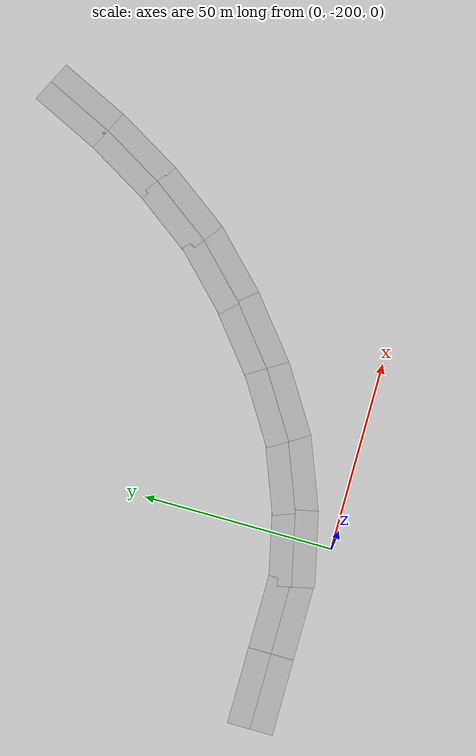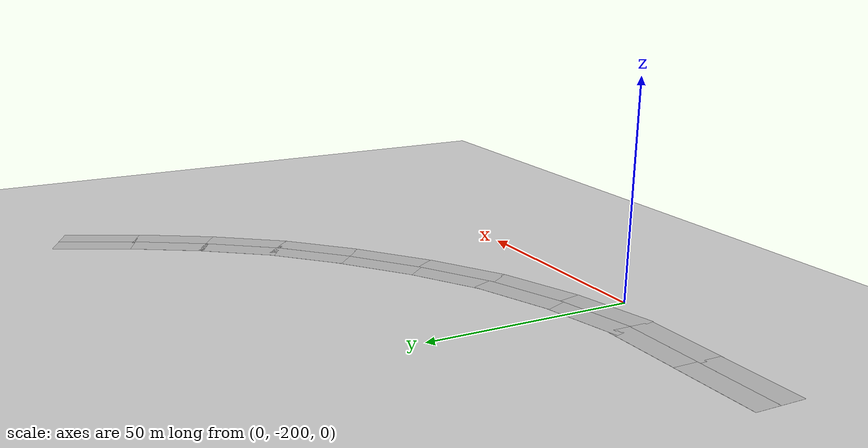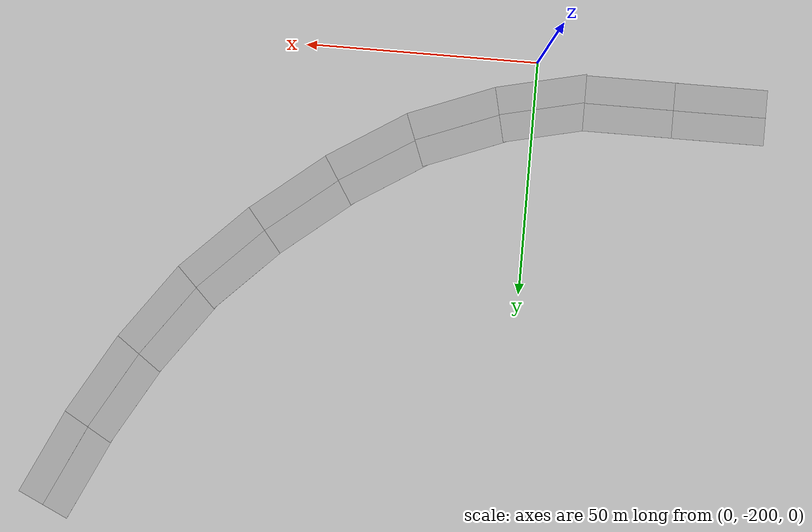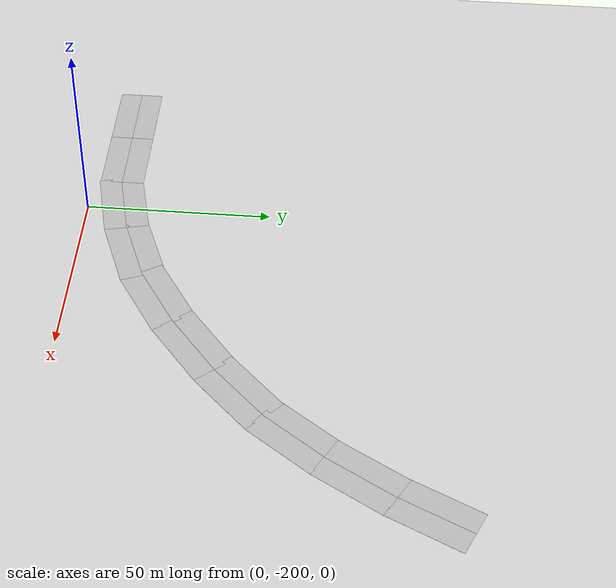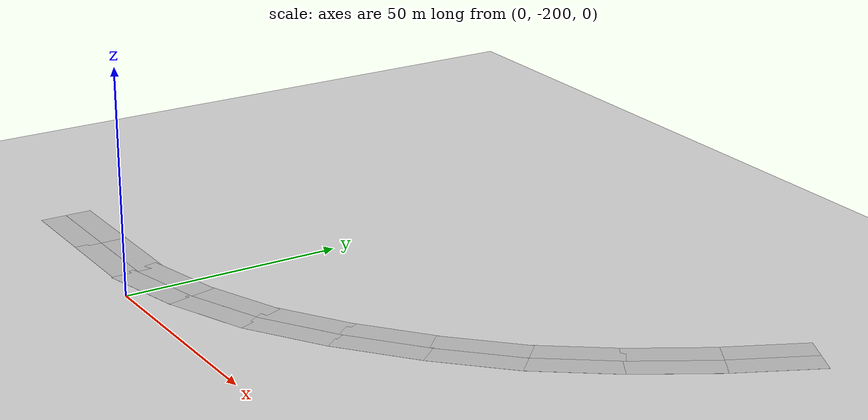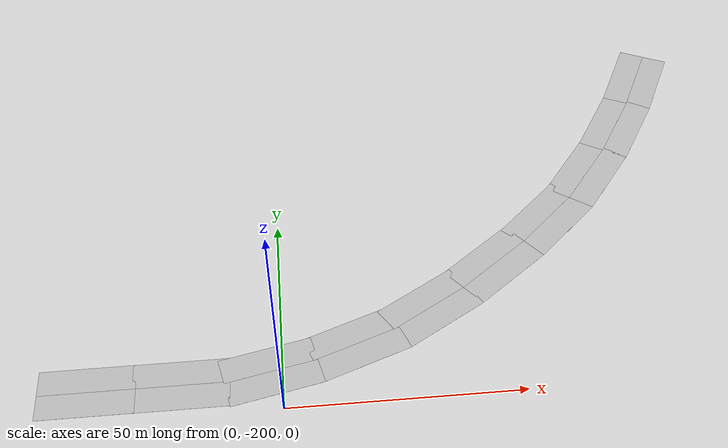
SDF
<sdf version="1.6">
 <world name="default">
  <model name="ground_plane">
   <static>1</static>
   <link name="link">
    <collision name="collision">
     <geometry><plane><normal>0 0 1</normal><size>500 500</size></plane></geometry>
     <surface><friction><ode><mu>100</mu><mu2>50</mu2></ode></friction></surface>
    </collision>
    <visual name="visual">
     <cast_shadows>0</cast_shadows>
     <geometry><plane><normal>0 0 1</normal><size>500 500</size></plane></geometry>
     <material>
      <script><uri>file://media/materials/scripts/gazebo.material</uri><name>Gazebo/Grey</name></script>
     </material>
    </visual>
   </link>
  </model>
  <model name="double_raw_road_4_clone_1">
   <model name="raw_road">
    <link name="link">
     <inertial>
      <mass>1</mass>
      <inertia>
       <ixx>0.166667</ixx>
       <ixy>0</ixy>
       <ixz>0</ixz>
       <iyy>0.166667</iyy>
       <iyz>0</iyz>
       <izz>0.166667</izz>
      </inertia>
     </inertial>
     <visual name="visual">
      <geometry><box><size>20 6 0.02</size></box></geometry>
      <material>
       <script>
        <name>asphalt/Diffuse</name>
        <uri>model://raw_road/materials/scripts</uri>
        <uri>model://raw_road/materials/textures</uri>
       </script>
       <shader type="vertex"><normal_map>__default__</normal_map></shader>
       <ambient>0.3 0.3 0.3 1</ambient>
       <diffuse>0.7 0.7 0.7 1</diffuse>
       <specular>0.01 0.01 0.01 1</specular>
       <emissive>0 0 0 1</emissive>
      </material>
      <pose>0 0 0.01 0 -0 0</pose>
     </visual>
     <collision name="collision">
      <pose>0 0 0.01 0 -0 0</pose>
      <geometry><box><size>20 6 0.02</size></box></geometry>
      <surface>
       <friction>
        <ode><mu>1</mu><mu2>1</mu2><fdir1>0 0 0</fdir1><slip1>0</slip1><slip2>0</slip2></ode>
        <torsional>
         <coefficient>1</coefficient>
         <patch_radius>0</patch_radius>
         <surface_radius>0</surface_radius>
         <use_patch_radius>1</use_patch_radius>
         <ode><slip>0</slip></ode>
        </torsional>
       </friction>
       <bounce><restitution_coefficient>0</restitution_coefficient><threshold>1e+06</threshold></bounce>
       <contact>
        <collide_without_contact>0</collide_without_contact>
        <collide_without_contact_bitmask>1</collide_without_contact_bitmask>
        <collide_bitmask>1</collide_bitmask>
        <ode>
         <soft_cfm>0</soft_cfm>
         <soft_erp>0.2</soft_erp>
         <kp>1e+13</kp>
         <kd>1</kd>
         <max_vel>0.01</max_vel>
         <min_depth>0</min_depth>
        </ode>
        <bullet>
         <split_impulse>1</split_impulse>
         <split_impulse_penetration_threshold>-0.01</split_impulse_penetration_threshold>
         <soft_cfm>0</soft_cfm>
         <soft_erp>0.2</soft_erp>
         <kp>1e+13</kp>
         <kd>1</kd>
        </bullet>
       </contact>
      </surface>
     </collision>
    </link>
    <static>1</static>
    <pose>0 -3.0009 0 0 -0 0</pose>
   </model>
   <model name="raw_road_0">
    <link name="link">
     <inertial>
      <mass>1</mass>
      <inertia>
       <ixx>0.166667</ixx>
       <ixy>0</ixy>
       <ixz>0</ixz>
       <iyy>0.166667</iyy>
       <iyz>0</iyz>
       <izz>0.166667</izz>
      </inertia>
     </inertial>
     <visual name="visual">
      <geometry><box><size>20 6 0.02</size></box></geometry>
      <material>
       <script>
        <name>asphalt/Diffuse</name>
        <uri>model://raw_road/materials/scripts</uri>
        <uri>model://raw_road/materials/textures</uri>
       </script>
       <shader type="vertex"><normal_map>__default__</normal_map></shader>
       <ambient>0.3 0.3 0.3 1</ambient>
       <diffuse>0.7 0.7 0.7 1</diffuse>
       <specular>0.01 0.01 0.01 1</specular>
       <emissive>0 0 0 1</emissive>
      </material>
      <pose>0 0 0.01 0 -0 0</pose>
     </visual>
     <collision name="collision">
      <pose>0 0 0.01 0 -0 0</pose>
      <geometry><box><size>20 6 0.02</size></box></geometry>
      <surface>
       <friction>
        <ode><mu>1</mu><mu2>1</mu2><fdir1>0 0 0</fdir1><slip1>0</slip1><slip2>0</slip2></ode>
        <torsional>
         <coefficient>1</coefficient>
         <patch_radius>0</patch_radius>
         <surface_radius>0</surface_radius>
         <use_patch_radius>1</use_patch_radius>
         <ode><slip>0</slip></ode>
        </torsional>
       </friction>
       <bounce><restitution_coefficient>0</restitution_coefficient><threshold>1e+06</threshold></bounce>
       <contact>
        <collide_without_contact>0</collide_without_contact>
        <collide_without_contact_bitmask>1</collide_without_contact_bitmask>
        <collide_bitmask>1</collide_bitmask>
        <ode>
         <soft_cfm>0</soft_cfm>
         <soft_erp>0.2</soft_erp>
         <kp>1e+13</kp>
         <kd>1</kd>
         <max_vel>0.01</max_vel>
         <min_depth>0</min_depth>
        </ode>
        <bullet>
         <split_impulse>1</split_impulse>
         <split_impulse_penetration_threshold>-0.01</split_impulse_penetration_threshold>
         <soft_cfm>0</soft_cfm>
         <soft_erp>0.2</soft_erp>
         <kp>1e+13</kp>
         <kd>1</kd>
        </bullet>
       </contact>
      </surface>
     </collision>
    </link>
    <static>1</static>
    <pose>0 3.0009 0 0 -0 0</pose>
   </model>
   <static>1</static>
   <pose>-40.145 -192.247 0 0 -0 0</pose>
  </model>
  <model name="double_raw_road_4_clone_2">
   <model name="raw_road">
    <link name="link">
     <inertial>
      <mass>1</mass>
      <inertia>
       <ixx>0.166667</ixx>
       <ixy>0</ixy>
       <ixz>0</ixz>
       <iyy>0.166667</iyy>
       <iyz>0</iyz>
       <izz>0.166667</izz>
      </inertia>
     </inertial>
     <visual name="visual">
      <geometry><box><size>20 6 0.02</size></box></geometry>
      <material>
       <script>
        <name>asphalt/Diffuse</name>
        <uri>model://raw_road/materials/scripts</uri>
        <uri>model://raw_road/materials/textures</uri>
       </script>
       <shader type="vertex"><normal_map>__default__</normal_map></shader>
       <ambient>0.3 0.3 0.3 1</ambient>
       <diffuse>0.7 0.7 0.7 1</diffuse>
       <specular>0.01 0.01 0.01 1</specular>
       <emissive>0 0 0 1</emissive>
      </material>
      <pose>0 0 0.01 0 -0 0</pose>
     </visual>
     <collision name="collision">
      <pose>0 0 0.01 0 -0 0</pose>
      <geometry><box><size>20 6 0.02</size></box></geometry>
      <surface>
       <friction>
        <ode><mu>1</mu><mu2>1</mu2><fdir1>0 0 0</fdir1><slip1>0</slip1><slip2>0</slip2></ode>
        <torsional>
         <coefficient>1</coefficient>
         <patch_radius>0</patch_radius>
         <surface_radius>0</surface_radius>
         <use_patch_radius>1</use_patch_radius>
         <ode><slip>0</slip></ode>
        </torsional>
       </friction>
       <bounce><restitution_coefficient>0</restitution_coefficient><threshold>1e+06</threshold></bounce>
       <contact>
        <collide_without_contact>0</collide_without_contact>
        <collide_without_contact_bitmask>1</collide_without_contact_bitmask>
        <collide_bitmask>1</collide_bitmask>
        <ode>
         <soft_cfm>0</soft_cfm>
         <soft_erp>0.2</soft_erp>
         <kp>1e+13</kp>
         <kd>1</kd>
         <max_vel>0.01</max_vel>
         <min_depth>0</min_depth>
        </ode>
        <bullet>
         <split_impulse>1</split_impulse>
         <split_impulse_penetration_threshold>-0.01</split_impulse_penetration_threshold>
         <soft_cfm>0</soft_cfm>
         <soft_erp>0.2</soft_erp>
         <kp>1e+13</kp>
         <kd>1</kd>
        </bullet>
       </contact>
      </surface>
     </collision>
    </link>
    <static>1</static>
    <pose>0 -3.0009 0 0 -0 0</pose>
   </model>
   <model name="raw_road_0">
    <link name="link">
     <inertial>
      <mass>1</mass>
      <inertia>
       <ixx>0.166667</ixx>
       <ixy>0</ixy>
       <ixz>0</ixz>
       <iyy>0.166667</iyy>
       <iyz>0</iyz>
       <izz>0.166667</izz>
      </inertia>
     </inertial>
     <visual name="visual">
      <geometry><box><size>20 6 0.02</size></box></geometry>
      <material>
       <script>
        <name>asphalt/Diffuse</name>
        <uri>model://raw_road/materials/scripts</uri>
        <uri>model://raw_road/materials/textures</uri>
       </script>
       <shader type="vertex"><normal_map>__default__</normal_map></shader>
       <ambient>0.3 0.3 0.3 1</ambient>
       <diffuse>0.7 0.7 0.7 1</diffuse>
       <specular>0.01 0.01 0.01 1</specular>
       <emissive>0 0 0 1</emissive>
      </material>
      <pose>0 0 0.01 0 -0 0</pose>
     </visual>
     <collision name="collision">
      <pose>0 0 0.01 0 -0 0</pose>
      <geometry><box><size>20 6 0.02</size></box></geometry>
      <surface>
       <friction>
        <ode><mu>1</mu><mu2>1</mu2><fdir1>0 0 0</fdir1><slip1>0</slip1><slip2>0</slip2></ode>
        <torsional>
         <coefficient>1</coefficient>
         <patch_radius>0</patch_radius>
         <surface_radius>0</surface_radius>
         <use_patch_radius>1</use_patch_radius>
         <ode><slip>0</slip></ode>
        </torsional>
       </friction>
       <bounce><restitution_coefficient>0</restitution_coefficient><threshold>1e+06</threshold></bounce>
       <contact>
        <collide_without_contact>0</collide_without_contact>
        <collide_without_contact_bitmask>1</collide_without_contact_bitmask>
        <collide_bitmask>1</collide_bitmask>
        <ode>
         <soft_cfm>0</soft_cfm>
         <soft_erp>0.2</soft_erp>
         <kp>1e+13</kp>
         <kd>1</kd>
         <max_vel>0.01</max_vel>
         <min_depth>0</min_depth>
        </ode>
        <bullet>
         <split_impulse>1</split_impulse>
         <split_impulse_penetration_threshold>-0.01</split_impulse_penetration_threshold>
         <soft_cfm>0</soft_cfm>
         <soft_erp>0.2</soft_erp>
         <kp>1e+13</kp>
         <kd>1</kd>
        </bullet>
       </contact>
      </surface>
     </collision>
    </link>
    <static>1</static>
    <pose>0 3.0009 0 0 -0 0</pose>
   </model>
   <static>1</static>
   <pose>-20.8628 -192.274 0 0 -0 0</pose>
  </model>
  <model name="double_raw_road_4_clone_2_clone_0">
   <model name="raw_road">
    <link name="link">
     <inertial>
      <mass>1</mass>
      <inertia>
       <ixx>0.166667</ixx>
       <ixy>0</ixy>
       <ixz>0</ixz>
       <iyy>0.166667</iyy>
       <iyz>0</iyz>
       <izz>0.166667</izz>
      </inertia>
     </inertial>
     <visual name="visual">
      <geometry><box><size>20 6 0.02</size></box></geometry>
      <material>
       <script>
        <name>asphalt/Diffuse</name>
        <uri>model://raw_road/materials/scripts</uri>
        <uri>model://raw_road/materials/textures</uri>
       </script>
       <shader type="vertex"><normal_map>__default__</normal_map></shader>
       <ambient>0.3 0.3 0.3 1</ambient>
       <diffuse>0.7 0.7 0.7 1</diffuse>
       <specular>0.01 0.01 0.01 1</specular>
       <emissive>0 0 0 1</emissive>
      </material>
      <pose>0 0 0.01 0 -0 0</pose>
     </visual>
     <collision name="collision">
      <pose>0 0 0.01 0 -0 0</pose>
      <geometry><box><size>20 6 0.02</size></box></geometry>
      <surface>
       <friction>
        <ode><mu>1</mu><mu2>1</mu2><fdir1>0 0 0</fdir1><slip1>0</slip1><slip2>0</slip2></ode>
        <torsional>
         <coefficient>1</coefficient>
         <patch_radius>0</patch_radius>
         <surface_radius>0</surface_radius>
         <use_patch_radius>1</use_patch_radius>
         <ode><slip>0</slip></ode>
        </torsional>
       </friction>
       <bounce><restitution_coefficient>0</restitution_coefficient><threshold>1e+06</threshold></bounce>
       <contact>
        <collide_without_contact>0</collide_without_contact>
        <collide_without_contact_bitmask>1</collide_without_contact_bitmask>
        <collide_bitmask>1</collide_bitmask>
        <ode>
         <soft_cfm>0</soft_cfm>
         <soft_erp>0.2</soft_erp>
         <kp>1e+13</kp>
         <kd>1</kd>
         <max_vel>0.01</max_vel>
         <min_depth>0</min_depth>
        </ode>
        <bullet>
         <split_impulse>1</split_impulse>
         <split_impulse_penetration_threshold>-0.01</split_impulse_penetration_threshold>
         <soft_cfm>0</soft_cfm>
         <soft_erp>0.2</soft_erp>
         <kp>1e+13</kp>
         <kd>1</kd>
        </bullet>
       </contact>
      </surface>
     </collision>
    </link>
    <static>1</static>
    <pose>0 -3.0009 0 0 -0 0</pose>
   </model>
   <model name="raw_road_0">
    <link name="link">
     <inertial>
      <mass>1</mass>
      <inertia>
       <ixx>0.166667</ixx>
       <ixy>0</ixy>
       <ixz>0</ixz>
       <iyy>0.166667</iyy>
       <iyz>0</iyz>
       <izz>0.166667</izz>
      </inertia>
     </inertial>
     <visual name="visual">
      <geometry><box><size>20 6 0.02</size></box></geometry>
      <material>
       <script>
        <name>asphalt/Diffuse</name>
        <uri>model://raw_road/materials/scripts</uri>
        <uri>model://raw_road/materials/textures</uri>
       </script>
       <shader type="vertex"><normal_map>__default__</normal_map></shader>
       <ambient>0.3 0.3 0.3 1</ambient>
       <diffuse>0.7 0.7 0.7 1</diffuse>
       <specular>0.01 0.01 0.01 1</specular>
       <emissive>0 0 0 1</emissive>
      </material>
      <pose>0 0 0.01 0 -0 0</pose>
     </visual>
     <collision name="collision">
      <pose>0 0 0.01 0 -0 0</pose>
      <geometry><box><size>20 6 0.02</size></box></geometry>
      <surface>
       <friction>
        <ode><mu>1</mu><mu2>1</mu2><fdir1>0 0 0</fdir1><slip1>0</slip1><slip2>0</slip2></ode>
        <torsional>
         <coefficient>1</coefficient>
         <patch_radius>0</patch_radius>
         <surface_radius>0</surface_radius>
         <use_patch_radius>1</use_patch_radius>
         <ode><slip>0</slip></ode>
        </torsional>
       </friction>
       <bounce><restitution_coefficient>0</restitution_coefficient><threshold>1e+06</threshold></bounce>
       <contact>
        <collide_without_contact>0</collide_without_contact>
        <collide_without_contact_bitmask>1</collide_without_contact_bitmask>
        <collide_bitmask>1</collide_bitmask>
        <ode>
         <soft_cfm>0</soft_cfm>
         <soft_erp>0.2</soft_erp>
         <kp>1e+13</kp>
         <kd>1</kd>
         <max_vel>0.01</max_vel>
         <min_depth>0</min_depth>
        </ode>
        <bullet>
         <split_impulse>1</split_impulse>
         <split_impulse_penetration_threshold>-0.01</split_impulse_penetration_threshold>
         <soft_cfm>0</soft_cfm>
         <soft_erp>0.2</soft_erp>
         <kp>1e+13</kp>
         <kd>1</kd>
        </bullet>
       </contact>
      </surface>
     </collision>
    </link>
    <static>1</static>
    <pose>0 3.0009 0 0 -0 0</pose>
   </model>
   <static>1</static>
   <pose>-2.42866 -190.505 0 0 -0 0.221672</pose>
  </model>
  <model name="double_raw_road_4_clone_2_clone_0_clone">
   <model name="raw_road">
    <link name="link">
     <inertial>
      <mass>1</mass>
      <inertia>
       <ixx>0.166667</ixx>
       <ixy>0</ixy>
       <ixz>0</ixz>
       <iyy>0.166667</iyy>
       <iyz>0</iyz>
       <izz>0.166667</izz>
      </inertia>
     </inertial>
     <visual name="visual">
      <geometry><box><size>20 6 0.02</size></box></geometry>
      <material>
       <script>
        <name>asphalt/Diffuse</name>
        <uri>model://raw_road/materials/scripts</uri>
        <uri>model://raw_road/materials/textures</uri>
       </script>
       <shader type="vertex"><normal_map>__default__</normal_map></shader>
       <ambient>0.3 0.3 0.3 1</ambient>
       <diffuse>0.7 0.7 0.7 1</diffuse>
       <specular>0.01 0.01 0.01 1</specular>
       <emissive>0 0 0 1</emissive>
      </material>
      <pose>0 0 0.01 0 -0 0</pose>
     </visual>
     <collision name="collision">
      <pose>0 0 0.01 0 -0 0</pose>
      <geometry><box><size>20 6 0.02</size></box></geometry>
      <surface>
       <friction>
        <ode><mu>1</mu><mu2>1</mu2><fdir1>0 0 0</fdir1><slip1>0</slip1><slip2>0</slip2></ode>
        <torsional>
         <coefficient>1</coefficient>
         <patch_radius>0</patch_radius>
         <surface_radius>0</surface_radius>
         <use_patch_radius>1</use_patch_radius>
         <ode><slip>0</slip></ode>
        </torsional>
       </friction>
       <bounce><restitution_coefficient>0</restitution_coefficient><threshold>1e+06</threshold></bounce>
       <contact>
        <collide_without_contact>0</collide_without_contact>
        <collide_without_contact_bitmask>1</collide_without_contact_bitmask>
        <collide_bitmask>1</collide_bitmask>
        <ode>
         <soft_cfm>0</soft_cfm>
         <soft_erp>0.2</soft_erp>
         <kp>1e+13</kp>
         <kd>1</kd>
         <max_vel>0.01</max_vel>
         <min_depth>0</min_depth>
        </ode>
        <bullet>
         <split_impulse>1</split_impulse>
         <split_impulse_penetration_threshold>-0.01</split_impulse_penetration_threshold>
         <soft_cfm>0</soft_cfm>
         <soft_erp>0.2</soft_erp>
         <kp>1e+13</kp>
         <kd>1</kd>
        </bullet>
       </contact>
      </surface>
     </collision>
    </link>
    <static>1</static>
    <pose>0 -3.0009 0 0 -0 0</pose>
   </model>
   <model name="raw_road_0">
    <link name="link">
     <inertial>
      <mass>1</mass>
      <inertia>
       <ixx>0.166667</ixx>
       <ixy>0</ixy>
       <ixz>0</ixz>
       <iyy>0.166667</iyy>
       <iyz>0</iyz>
       <izz>0.166667</izz>
      </inertia>
     </inertial>
     <visual name="visual">
      <geometry><box><size>20 6 0.02</size></box></geometry>
      <material>
       <script>
        <name>asphalt/Diffuse</name>
        <uri>model://raw_road/materials/scripts</uri>
        <uri>model://raw_road/materials/textures</uri>
       </script>
       <shader type="vertex"><normal_map>__default__</normal_map></shader>
       <ambient>0.3 0.3 0.3 1</ambient>
       <diffuse>0.7 0.7 0.7 1</diffuse>
       <specular>0.01 0.01 0.01 1</specular>
       <emissive>0 0 0 1</emissive>
      </material>
      <pose>0 0 0.01 0 -0 0</pose>
     </visual>
     <collision name="collision">
      <pose>0 0 0.01 0 -0 0</pose>
      <geometry><box><size>20 6 0.02</size></box></geometry>
      <surface>
       <friction>
        <ode><mu>1</mu><mu2>1</mu2><fdir1>0 0 0</fdir1><slip1>0</slip1><slip2>0</slip2></ode>
        <torsional>
         <coefficient>1</coefficient>
         <patch_radius>0</patch_radius>
         <surface_radius>0</surface_radius>
         <use_patch_radius>1</use_patch_radius>
         <ode><slip>0</slip></ode>
        </torsional>
       </friction>
       <bounce><restitution_coefficient>0</restitution_coefficient><threshold>1e+06</threshold></bounce>
       <contact>
        <collide_without_contact>0</collide_without_contact>
        <collide_without_contact_bitmask>1</collide_without_contact_bitmask>
        <collide_bitmask>1</collide_bitmask>
        <ode>
         <soft_cfm>0</soft_cfm>
         <soft_erp>0.2</soft_erp>
         <kp>1e+13</kp>
         <kd>1</kd>
         <max_vel>0.01</max_vel>
         <min_depth>0</min_depth>
        </ode>
        <bullet>
         <split_impulse>1</split_impulse>
         <split_impulse_penetration_threshold>-0.01</split_impulse_penetration_threshold>
         <soft_cfm>0</soft_cfm>
         <soft_erp>0.2</soft_erp>
         <kp>1e+13</kp>
         <kd>1</kd>
        </bullet>
       </contact>
      </surface>
     </collision>
    </link>
    <static>1</static>
    <pose>0 3.0009 0 0 -0 0</pose>
   </model>
   <static>1</static>
   <pose>15.7326 -184.96 0 0 -0 0.368959</pose>
  </model>
  <model name="double_raw_road_4_clone_2_clone_0_clone_clone">
   <model name="raw_road">
    <link name="link">
     <inertial>
      <mass>1</mass>
      <inertia>
       <ixx>0.166667</ixx>
       <ixy>0</ixy>
       <ixz>0</ixz>
       <iyy>0.166667</iyy>
       <iyz>0</iyz>
       <izz>0.166667</izz>
      </inertia>
     </inertial>
     <visual name="visual">
      <geometry><box><size>20 6 0.02</size></box></geometry>
      <material>
       <script>
        <name>asphalt/Diffuse</name>
        <uri>model://raw_road/materials/scripts</uri>
        <uri>model://raw_road/materials/textures</uri>
       </script>
       <shader type="vertex"><normal_map>__default__</normal_map></shader>
       <ambient>0.3 0.3 0.3 1</ambient>
       <diffuse>0.7 0.7 0.7 1</diffuse>
       <specular>0.01 0.01 0.01 1</specular>
       <emissive>0 0 0 1</emissive>
      </material>
      <pose>0 0 0.01 0 -0 0</pose>
     </visual>
     <collision name="collision">
      <pose>0 0 0.01 0 -0 0</pose>
      <geometry><box><size>20 6 0.02</size></box></geometry>
      <surface>
       <friction>
        <ode><mu>1</mu><mu2>1</mu2><fdir1>0 0 0</fdir1><slip1>0</slip1><slip2>0</slip2></ode>
        <torsional>
         <coefficient>1</coefficient>
         <patch_radius>0</patch_radius>
         <surface_radius>0</surface_radius>
         <use_patch_radius>1</use_patch_radius>
         <ode><slip>0</slip></ode>
        </torsional>
       </friction>
       <bounce><restitution_coefficient>0</restitution_coefficient><threshold>1e+06</threshold></bounce>
       <contact>
        <collide_without_contact>0</collide_without_contact>
        <collide_without_contact_bitmask>1</collide_without_contact_bitmask>
        <collide_bitmask>1</collide_bitmask>
        <ode>
         <soft_cfm>0</soft_cfm>
         <soft_erp>0.2</soft_erp>
         <kp>1e+13</kp>
         <kd>1</kd>
         <max_vel>0.01</max_vel>
         <min_depth>0</min_depth>
        </ode>
        <bullet>
         <split_impulse>1</split_impulse>
         <split_impulse_penetration_threshold>-0.01</split_impulse_penetration_threshold>
         <soft_cfm>0</soft_cfm>
         <soft_erp>0.2</soft_erp>
         <kp>1e+13</kp>
         <kd>1</kd>
        </bullet>
       </contact>
      </surface>
     </collision>
    </link>
    <static>1</static>
    <pose>0 -3.0009 0 0 -0 0</pose>
   </model>
   <model name="raw_road_0">
    <link name="link">
     <inertial>
      <mass>1</mass>
      <inertia>
       <ixx>0.166667</ixx>
       <ixy>0</ixy>
       <ixz>0</ixz>
       <iyy>0.166667</iyy>
       <iyz>0</iyz>
       <izz>0.166667</izz>
      </inertia>
     </inertial>
     <visual name="visual">
      <geometry><box><size>20 6 0.02</size></box></geometry>
      <material>
       <script>
        <name>asphalt/Diffuse</name>
        <uri>model://raw_road/materials/scripts</uri>
        <uri>model://raw_road/materials/textures</uri>
       </script>
       <shader type="vertex"><normal_map>__default__</normal_map></shader>
       <ambient>0.3 0.3 0.3 1</ambient>
       <diffuse>0.7 0.7 0.7 1</diffuse>
       <specular>0.01 0.01 0.01 1</specular>
       <emissive>0 0 0 1</emissive>
      </material>
      <pose>0 0 0.01 0 -0 0</pose>
     </visual>
     <collision name="collision">
      <pose>0 0 0.01 0 -0 0</pose>
      <geometry><box><size>20 6 0.02</size></box></geometry>
      <surface>
       <friction>
        <ode><mu>1</mu><mu2>1</mu2><fdir1>0 0 0</fdir1><slip1>0</slip1><slip2>0</slip2></ode>
        <torsional>
         <coefficient>1</coefficient>
         <patch_radius>0</patch_radius>
         <surface_radius>0</surface_radius>
         <use_patch_radius>1</use_patch_radius>
         <ode><slip>0</slip></ode>
        </torsional>
       </friction>
       <bounce><restitution_coefficient>0</restitution_coefficient><threshold>1e+06</threshold></bounce>
       <contact>
        <collide_without_contact>0</collide_without_contact>
        <collide_without_contact_bitmask>1</collide_without_contact_bitmask>
        <collide_bitmask>1</collide_bitmask>
        <ode>
         <soft_cfm>0</soft_cfm>
         <soft_erp>0.2</soft_erp>
         <kp>1e+13</kp>
         <kd>1</kd>
         <max_vel>0.01</max_vel>
         <min_depth>0</min_depth>
        </ode>
        <bullet>
         <split_impulse>1</split_impulse>
         <split_impulse_penetration_threshold>-0.01</split_impulse_penetration_threshold>
         <soft_cfm>0</soft_cfm>
         <soft_erp>0.2</soft_erp>
         <kp>1e+13</kp>
         <kd>1</kd>
        </bullet>
       </contact>
      </surface>
     </collision>
    </link>
    <static>1</static>
    <pose>0 3.0009 0 0 -0 0</pose>
   </model>
   <static>1</static>
   <pose>32.4041 -176.592 0 0 -0 0.559641</pose>
  </model>
  <model name="double_raw_road_4_clone_2_clone_0_clone_clone_clone">
   <model name="raw_road">
    <link name="link">
     <inertial>
      <mass>1</mass>
      <inertia>
       <ixx>0.166667</ixx>
       <ixy>0</ixy>
       <ixz>0</ixz>
       <iyy>0.166667</iyy>
       <iyz>0</iyz>
       <izz>0.166667</izz>
      </inertia>
     </inertial>
     <visual name="visual">
      <geometry><box><size>20 6 0.02</size></box></geometry>
      <material>
       <script>
        <name>asphalt/Diffuse</name>
        <uri>model://raw_road/materials/scripts</uri>
        <uri>model://raw_road/materials/textures</uri>
       </script>
       <shader type="vertex"><normal_map>__default__</normal_map></shader>
       <ambient>0.3 0.3 0.3 1</ambient>
       <diffuse>0.7 0.7 0.7 1</diffuse>
       <specular>0.01 0.01 0.01 1</specular>
       <emissive>0 0 0 1</emissive>
      </material>
      <pose>0 0 0.01 0 -0 0</pose>
     </visual>
     <collision name="collision">
      <pose>0 0 0.01 0 -0 0</pose>
      <geometry><box><size>20 6 0.02</size></box></geometry>
      <surface>
       <friction>
        <ode><mu>1</mu><mu2>1</mu2><fdir1>0 0 0</fdir1><slip1>0</slip1><slip2>0</slip2></ode>
        <torsional>
         <coefficient>1</coefficient>
         <patch_radius>0</patch_radius>
         <surface_radius>0</surface_radius>
         <use_patch_radius>1</use_patch_radius>
         <ode><slip>0</slip></ode>
        </torsional>
       </friction>
       <bounce><restitution_coefficient>0</restitution_coefficient><threshold>1e+06</threshold></bounce>
       <contact>
        <collide_without_contact>0</collide_without_contact>
        <collide_without_contact_bitmask>1</collide_without_contact_bitmask>
        <collide_bitmask>1</collide_bitmask>
        <ode>
         <soft_cfm>0</soft_cfm>
         <soft_erp>0.2</soft_erp>
         <kp>1e+13</kp>
         <kd>1</kd>
         <max_vel>0.01</max_vel>
         <min_depth>0</min_depth>
        </ode>
        <bullet>
         <split_impulse>1</split_impulse>
         <split_impulse_penetration_threshold>-0.01</split_impulse_penetration_threshold>
         <soft_cfm>0</soft_cfm>
         <soft_erp>0.2</soft_erp>
         <kp>1e+13</kp>
         <kd>1</kd>
        </bullet>
       </contact>
      </surface>
     </collision>
    </link>
    <static>1</static>
    <pose>0 -3.0009 0 0 -0 0</pose>
   </model>
   <model name="raw_road_0">
    <link name="link">
     <inertial>
      <mass>1</mass>
      <inertia>
       <ixx>0.166667</ixx>
       <ixy>0</ixy>
       <ixz>0</ixz>
       <iyy>0.166667</iyy>
       <iyz>0</iyz>
       <izz>0.166667</izz>
      </inertia>
     </inertial>
     <visual name="visual">
      <geometry><box><size>20 6 0.02</size></box></geometry>
      <material>
       <script>
        <name>asphalt/Diffuse</name>
        <uri>model://raw_road/materials/scripts</uri>
        <uri>model://raw_road/materials/textures</uri>
       </script>
       <shader type="vertex"><normal_map>__default__</normal_map></shader>
       <ambient>0.3 0.3 0.3 1</ambient>
       <diffuse>0.7 0.7 0.7 1</diffuse>
       <specular>0.01 0.01 0.01 1</specular>
       <emissive>0 0 0 1</emissive>
      </material>
      <pose>0 0 0.01 0 -0 0</pose>
     </visual>
     <collision name="collision">
      <pose>0 0 0.01 0 -0 0</pose>
      <geometry><box><size>20 6 0.02</size></box></geometry>
      <surface>
       <friction>
        <ode><mu>1</mu><mu2>1</mu2><fdir1>0 0 0</fdir1><slip1>0</slip1><slip2>0</slip2></ode>
        <torsional>
         <coefficient>1</coefficient>
         <patch_radius>0</patch_radius>
         <surface_radius>0</surface_radius>
         <use_patch_radius>1</use_patch_radius>
         <ode><slip>0</slip></ode>
        </torsional>
       </friction>
       <bounce><restitution_coefficient>0</restitution_coefficient><threshold>1e+06</threshold></bounce>
       <contact>
        <collide_without_contact>0</collide_without_contact>
        <collide_without_contact_bitmask>1</collide_without_contact_bitmask>
        <collide_bitmask>1</collide_bitmask>
        <ode>
         <soft_cfm>0</soft_cfm>
         <soft_erp>0.2</soft_erp>
         <kp>1e+13</kp>
         <kd>1</kd>
         <max_vel>0.01</max_vel>
         <min_depth>0</min_depth>
        </ode>
        <bullet>
         <split_impulse>1</split_impulse>
         <split_impulse_penetration_threshold>-0.01</split_impulse_penetration_threshold>
         <soft_cfm>0</soft_cfm>
         <soft_erp>0.2</soft_erp>
         <kp>1e+13</kp>
         <kd>1</kd>
        </bullet>
       </contact>
      </surface>
     </collision>
    </link>
    <static>1</static>
    <pose>0 3.0009 0 0 -0 0</pose>
   </model>
   <static>1</static>
   <pose>48.0457 -165.439 0 0 -0 0.675586</pose>
  </model>
  <model name="double_raw_road_4_clone_2_clone_0_clone_clone_clone_clone">
   <model name="raw_road">
    <link name="link">
     <inertial>
      <mass>1</mass>
      <inertia>
       <ixx>0.166667</ixx>
       <ixy>0</ixy>
       <ixz>0</ixz>
       <iyy>0.166667</iyy>
       <iyz>0</iyz>
       <izz>0.166667</izz>
      </inertia>
     </inertial>
     <visual name="visual">
      <geometry><box><size>20 6 0.02</size></box></geometry>
      <material>
       <script>
        <name>asphalt/Diffuse</name>
        <uri>model://raw_road/materials/scripts</uri>
        <uri>model://raw_road/materials/textures</uri>
       </script>
       <shader type="vertex"><normal_map>__default__</normal_map></shader>
       <ambient>0.3 0.3 0.3 1</ambient>
       <diffuse>0.7 0.7 0.7 1</diffuse>
       <specular>0.01 0.01 0.01 1</specular>
       <emissive>0 0 0 1</emissive>
      </material>
      <pose>0 0 0.01 0 -0 0</pose>
     </visual>
     <collision name="collision">
      <pose>0 0 0.01 0 -0 0</pose>
      <geometry><box><size>20 6 0.02</size></box></geometry>
      <surface>
       <friction>
        <ode><mu>1</mu><mu2>1</mu2><fdir1>0 0 0</fdir1><slip1>0</slip1><slip2>0</slip2></ode>
        <torsional>
         <coefficient>1</coefficient>
         <patch_radius>0</patch_radius>
         <surface_radius>0</surface_radius>
         <use_patch_radius>1</use_patch_radius>
         <ode><slip>0</slip></ode>
        </torsional>
       </friction>
       <bounce><restitution_coefficient>0</restitution_coefficient><threshold>1e+06</threshold></bounce>
       <contact>
        <collide_without_contact>0</collide_without_contact>
        <collide_without_contact_bitmask>1</collide_without_contact_bitmask>
        <collide_bitmask>1</collide_bitmask>
        <ode>
         <soft_cfm>0</soft_cfm>
         <soft_erp>0.2</soft_erp>
         <kp>1e+13</kp>
         <kd>1</kd>
         <max_vel>0.01</max_vel>
         <min_depth>0</min_depth>
        </ode>
        <bullet>
         <split_impulse>1</split_impulse>
         <split_impulse_penetration_threshold>-0.01</split_impulse_penetration_threshold>
         <soft_cfm>0</soft_cfm>
         <soft_erp>0.2</soft_erp>
         <kp>1e+13</kp>
         <kd>1</kd>
        </bullet>
       </contact>
      </surface>
     </collision>
    </link>
    <static>1</static>
    <pose>0 -3.0009 0 0 -0 0</pose>
   </model>
   <model name="raw_road_0">
    <link name="link">
     <inertial>
      <mass>1</mass>
      <inertia>
       <ixx>0.166667</ixx>
       <ixy>0</ixy>
       <ixz>0</ixz>
       <iyy>0.166667</iyy>
       <iyz>0</iyz>
       <izz>0.166667</izz>
      </inertia>
     </inertial>
     <visual name="visual">
      <geometry><box><size>20 6 0.02</size></box></geometry>
      <material>
       <script>
        <name>asphalt/Diffuse</name>
        <uri>model://raw_road/materials/scripts</uri>
        <uri>model://raw_road/materials/textures</uri>
       </script>
       <shader type="vertex"><normal_map>__default__</normal_map></shader>
       <ambient>0.3 0.3 0.3 1</ambient>
       <diffuse>0.7 0.7 0.7 1</diffuse>
       <specular>0.01 0.01 0.01 1</specular>
       <emissive>0 0 0 1</emissive>
      </material>
      <pose>0 0 0.01 0 -0 0</pose>
     </visual>
     <collision name="collision">
      <pose>0 0 0.01 0 -0 0</pose>
      <geometry><box><size>20 6 0.02</size></box></geometry>
      <surface>
       <friction>
        <ode><mu>1</mu><mu2>1</mu2><fdir1>0 0 0</fdir1><slip1>0</slip1><slip2>0</slip2></ode>
        <torsional>
         <coefficient>1</coefficient>
         <patch_radius>0</patch_radius>
         <surface_radius>0</surface_radius>
         <use_patch_radius>1</use_patch_radius>
         <ode><slip>0</slip></ode>
        </torsional>
       </friction>
       <bounce><restitution_coefficient>0</restitution_coefficient><threshold>1e+06</threshold></bounce>
       <contact>
        <collide_without_contact>0</collide_without_contact>
        <collide_without_contact_bitmask>1</collide_without_contact_bitmask>
        <collide_bitmask>1</collide_bitmask>
        <ode>
         <soft_cfm>0</soft_cfm>
         <soft_erp>0.2</soft_erp>
         <kp>1e+13</kp>
         <kd>1</kd>
         <max_vel>0.01</max_vel>
         <min_depth>0</min_depth>
        </ode>
        <bullet>
         <split_impulse>1</split_impulse>
         <split_impulse_penetration_threshold>-0.01</split_impulse_penetration_threshold>
         <soft_cfm>0</soft_cfm>
         <soft_erp>0.2</soft_erp>
         <kp>1e+13</kp>
         <kd>1</kd>
        </bullet>
       </contact>
      </surface>
     </collision>
    </link>
    <static>1</static>
    <pose>0 3.0009 0 0 -0 0</pose>
   </model>
   <static>1</static>
   <pose>62.46 -152.695 0 0 -0 0.776836</pose>
  </model>
  <model name="double_raw_road_4_clone_2_clone_0_clone_clone_clone_clone_clone">
   <model name="raw_road">
    <link name="link">
     <inertial>
      <mass>1</mass>
      <inertia>
       <ixx>0.166667</ixx>
       <ixy>0</ixy>
       <ixz>0</ixz>
       <iyy>0.166667</iyy>
       <iyz>0</iyz>
       <izz>0.166667</izz>
      </inertia>
     </inertial>
     <visual name="visual">
      <geometry><box><size>20 6 0.02</size></box></geometry>
      <material>
       <script>
        <name>asphalt/Diffuse</name>
        <uri>model://raw_road/materials/scripts</uri>
        <uri>model://raw_road/materials/textures</uri>
       </script>
       <shader type="vertex"><normal_map>__default__</normal_map></shader>
       <ambient>0.3 0.3 0.3 1</ambient>
       <diffuse>0.7 0.7 0.7 1</diffuse>
       <specular>0.01 0.01 0.01 1</specular>
       <emissive>0 0 0 1</emissive>
      </material>
      <pose>0 0 0.01 0 -0 0</pose>
     </visual>
     <collision name="collision">
      <pose>0 0 0.01 0 -0 0</pose>
      <geometry><box><size>20 6 0.02</size></box></geometry>
      <surface>
       <friction>
        <ode><mu>1</mu><mu2>1</mu2><fdir1>0 0 0</fdir1><slip1>0</slip1><slip2>0</slip2></ode>
        <torsional>
         <coefficient>1</coefficient>
         <patch_radius>0</patch_radius>
         <surface_radius>0</surface_radius>
         <use_patch_radius>1</use_patch_radius>
         <ode><slip>0</slip></ode>
        </torsional>
       </friction>
       <bounce><restitution_coefficient>0</restitution_coefficient><threshold>1e+06</threshold></bounce>
       <contact>
        <collide_without_contact>0</collide_without_contact>
        <collide_without_contact_bitmask>1</collide_without_contact_bitmask>
        <collide_bitmask>1</collide_bitmask>
        <ode>
         <soft_cfm>0</soft_cfm>
         <soft_erp>0.2</soft_erp>
         <kp>1e+13</kp>
         <kd>1</kd>
         <max_vel>0.01</max_vel>
         <min_depth>0</min_depth>
        </ode>
        <bullet>
         <split_impulse>1</split_impulse>
         <split_impulse_penetration_threshold>-0.01</split_impulse_penetration_threshold>
         <soft_cfm>0</soft_cfm>
         <soft_erp>0.2</soft_erp>
         <kp>1e+13</kp>
         <kd>1</kd>
        </bullet>
       </contact>
      </surface>
     </collision>
    </link>
    <static>1</static>
    <pose>0 -3.0009 0 0 -0 0</pose>
   </model>
   <model name="raw_road_0">
    <link name="link">
     <inertial>
      <mass>1</mass>
      <inertia>
       <ixx>0.166667</ixx>
       <ixy>0</ixy>
       <ixz>0</ixz>
       <iyy>0.166667</iyy>
       <iyz>0</iyz>
       <izz>0.166667</izz>
      </inertia>
     </inertial>
     <visual name="visual">
      <geometry><box><size>20 6 0.02</size></box></geometry>
      <material>
       <script>
        <name>asphalt/Diffuse</name>
        <uri>model://raw_road/materials/scripts</uri>
        <uri>model://raw_road/materials/textures</uri>
       </script>
       <shader type="vertex"><normal_map>__default__</normal_map></shader>
       <ambient>0.3 0.3 0.3 1</ambient>
       <diffuse>0.7 0.7 0.7 1</diffuse>
       <specular>0.01 0.01 0.01 1</specular>
       <emissive>0 0 0 1</emissive>
      </material>
      <pose>0 0 0.01 0 -0 0</pose>
     </visual>
     <collision name="collision">
      <pose>0 0 0.01 0 -0 0</pose>
      <geometry><box><size>20 6 0.02</size></box></geometry>
      <surface>
       <friction>
        <ode><mu>1</mu><mu2>1</mu2><fdir1>0 0 0</fdir1><slip1>0</slip1><slip2>0</slip2></ode>
        <torsional>
         <coefficient>1</coefficient>
         <patch_radius>0</patch_radius>
         <surface_radius>0</surface_radius>
         <use_patch_radius>1</use_patch_radius>
         <ode><slip>0</slip></ode>
        </torsional>
       </friction>
       <bounce><restitution_coefficient>0</restitution_coefficient><threshold>1e+06</threshold></bounce>
       <contact>
        <collide_without_contact>0</collide_without_contact>
        <collide_without_contact_bitmask>1</collide_without_contact_bitmask>
        <collide_bitmask>1</collide_bitmask>
        <ode>
         <soft_cfm>0</soft_cfm>
         <soft_erp>0.2</soft_erp>
         <kp>1e+13</kp>
         <kd>1</kd>
         <max_vel>0.01</max_vel>
         <min_depth>0</min_depth>
        </ode>
        <bullet>
         <split_impulse>1</split_impulse>
         <split_impulse_penetration_threshold>-0.01</split_impulse_penetration_threshold>
         <soft_cfm>0</soft_cfm>
         <soft_erp>0.2</soft_erp>
         <kp>1e+13</kp>
         <kd>1</kd>
        </bullet>
       </contact>
      </surface>
     </collision>
    </link>
    <static>1</static>
    <pose>0 3.0009 0 0 -0 0</pose>
   </model>
   <static>1</static>
   <pose>74.8325 -138.388 0 0 -0 0.937834</pose>
  </model>
  <model name="double_raw_road_4_clone_2_clone_0_clone_clone_clone_clone_clone_clone">
   <model name="raw_road">
    <link name="link">
     <inertial>
      <mass>1</mass>
      <inertia>
       <ixx>0.166667</ixx>
       <ixy>0</ixy>
       <ixz>0</ixz>
       <iyy>0.166667</iyy>
       <iyz>0</iyz>
       <izz>0.166667</izz>
      </inertia>
     </inertial>
     <visual name="visual">
      <geometry><box><size>20 6 0.02</size></box></geometry>
      <material>
       <script>
        <name>asphalt/Diffuse</name>
        <uri>model://raw_road/materials/scripts</uri>
        <uri>model://raw_road/materials/textures</uri>
       </script>
       <shader type="vertex"><normal_map>__default__</normal_map></shader>
       <ambient>0.3 0.3 0.3 1</ambient>
       <diffuse>0.7 0.7 0.7 1</diffuse>
       <specular>0.01 0.01 0.01 1</specular>
       <emissive>0 0 0 1</emissive>
      </material>
      <pose>0 0 0.01 0 -0 0</pose>
     </visual>
     <collision name="collision">
      <pose>0 0 0.01 0 -0 0</pose>
      <geometry><box><size>20 6 0.02</size></box></geometry>
      <surface>
       <friction>
        <ode><mu>1</mu><mu2>1</mu2><fdir1>0 0 0</fdir1><slip1>0</slip1><slip2>0</slip2></ode>
        <torsional>
         <coefficient>1</coefficient>
         <patch_radius>0</patch_radius>
         <surface_radius>0</surface_radius>
         <use_patch_radius>1</use_patch_radius>
         <ode><slip>0</slip></ode>
        </torsional>
       </friction>
       <bounce><restitution_coefficient>0</restitution_coefficient><threshold>1e+06</threshold></bounce>
       <contact>
        <collide_without_contact>0</collide_without_contact>
        <collide_without_contact_bitmask>1</collide_without_contact_bitmask>
        <collide_bitmask>1</collide_bitmask>
        <ode>
         <soft_cfm>0</soft_cfm>
         <soft_erp>0.2</soft_erp>
         <kp>1e+13</kp>
         <kd>1</kd>
         <max_vel>0.01</max_vel>
         <min_depth>0</min_depth>
        </ode>
        <bullet>
         <split_impulse>1</split_impulse>
         <split_impulse_penetration_threshold>-0.01</split_impulse_penetration_threshold>
         <soft_cfm>0</soft_cfm>
         <soft_erp>0.2</soft_erp>
         <kp>1e+13</kp>
         <kd>1</kd>
        </bullet>
       </contact>
      </surface>
     </collision>
    </link>
    <static>1</static>
    <pose>0 -3.0009 0 0 -0 0</pose>
   </model>
   <model name="raw_road_0">
    <link name="link">
     <inertial>
      <mass>1</mass>
      <inertia>
       <ixx>0.166667</ixx>
       <ixy>0</ixy>
       <ixz>0</ixz>
       <iyy>0.166667</iyy>
       <iyz>0</iyz>
       <izz>0.166667</izz>
      </inertia>
     </inertial>
     <visual name="visual">
      <geometry><box><size>20 6 0.02</size></box></geometry>
      <material>
       <script>
        <name>asphalt/Diffuse</name>
        <uri>model://raw_road/materials/scripts</uri>
        <uri>model://raw_road/materials/textures</uri>
       </script>
       <shader type="vertex"><normal_map>__default__</normal_map></shader>
       <ambient>0.3 0.3 0.3 1</ambient>
       <diffuse>0.7 0.7 0.7 1</diffuse>
       <specular>0.01 0.01 0.01 1</specular>
       <emissive>0 0 0 1</emissive>
      </material>
      <pose>0 0 0.01 0 -0 0</pose>
     </visual>
     <collision name="collision">
      <pose>0 0 0.01 0 -0 0</pose>
      <geometry><box><size>20 6 0.02</size></box></geometry>
      <surface>
       <friction>
        <ode><mu>1</mu><mu2>1</mu2><fdir1>0 0 0</fdir1><slip1>0</slip1><slip2>0</slip2></ode>
        <torsional>
         <coefficient>1</coefficient>
         <patch_radius>0</patch_radius>
         <surface_radius>0</surface_radius>
         <use_patch_radius>1</use_patch_radius>
         <ode><slip>0</slip></ode>
        </torsional>
       </friction>
       <bounce><restitution_coefficient>0</restitution_coefficient><threshold>1e+06</threshold></bounce>
       <contact>
        <collide_without_contact>0</collide_without_contact>
        <collide_without_contact_bitmask>1</collide_without_contact_bitmask>
        <collide_bitmask>1</collide_bitmask>
        <ode>
         <soft_cfm>0</soft_cfm>
         <soft_erp>0.2</soft_erp>
         <kp>1e+13</kp>
         <kd>1</kd>
         <max_vel>0.01</max_vel>
         <min_depth>0</min_depth>
        </ode>
        <bullet>
         <split_impulse>1</split_impulse>
         <split_impulse_penetration_threshold>-0.01</split_impulse_penetration_threshold>
         <soft_cfm>0</soft_cfm>
         <soft_erp>0.2</soft_erp>
         <kp>1e+13</kp>
         <kd>1</kd>
        </bullet>
       </contact>
      </surface>
     </collision>
    </link>
    <static>1</static>
    <pose>0 3.0009 0 0 -0 0</pose>
   </model>
   <static>1</static>
   <pose>85.4219 -122.321 0 0 -0 1.03945</pose>
  </model>
  <model name="double_raw_road_4_clone_2_clone_0_clone_clone_clone_clone_clone_clone_0">
   <model name="raw_road">
    <link name="link">
     <inertial>
      <mass>1</mass>
      <inertia>
       <ixx>0.166667</ixx>
       <ixy>0</ixy>
       <ixz>0</ixz>
       <iyy>0.166667</iyy>
       <iyz>0</iyz>
       <izz>0.166667</izz>
      </inertia>
     </inertial>
     <visual name="visual">
      <geometry><box><size>20 6 0.02</size></box></geometry>
      <material>
       <script>
        <name>asphalt/Diffuse</name>
        <uri>model://raw_road/materials/scripts</uri>
        <uri>model://raw_road/materials/textures</uri>
       </script>
       <shader type="vertex"><normal_map>__default__</normal_map></shader>
       <ambient>0.3 0.3 0.3 1</ambient>
       <diffuse>0.7 0.7 0.7 1</diffuse>
       <specular>0.01 0.01 0.01 1</specular>
       <emissive>0 0 0 1</emissive>
      </material>
      <pose>0 0 0.01 0 -0 0</pose>
     </visual>
     <collision name="collision">
      <pose>0 0 0.01 0 -0 0</pose>
      <geometry><box><size>20 6 0.02</size></box></geometry>
      <surface>
       <friction>
        <ode><mu>1</mu><mu2>1</mu2><fdir1>0 0 0</fdir1><slip1>0</slip1><slip2>0</slip2></ode>
        <torsional>
         <coefficient>1</coefficient>
         <patch_radius>0</patch_radius>
         <surface_radius>0</surface_radius>
         <use_patch_radius>1</use_patch_radius>
         <ode><slip>0</slip></ode>
        </torsional>
       </friction>
       <bounce><restitution_coefficient>0</restitution_coefficient><threshold>1e+06</threshold></bounce>
       <contact>
        <collide_without_contact>0</collide_without_contact>
        <collide_without_contact_bitmask>1</collide_without_contact_bitmask>
        <collide_bitmask>1</collide_bitmask>
        <ode>
         <soft_cfm>0</soft_cfm>
         <soft_erp>0.2</soft_erp>
         <kp>1e+13</kp>
         <kd>1</kd>
         <max_vel>0.01</max_vel>
         <min_depth>0</min_depth>
        </ode>
        <bullet>
         <split_impulse>1</split_impulse>
         <split_impulse_penetration_threshold>-0.01</split_impulse_penetration_threshold>
         <soft_cfm>0</soft_cfm>
         <soft_erp>0.2</soft_erp>
         <kp>1e+13</kp>
         <kd>1</kd>
        </bullet>
       </contact>
      </surface>
     </collision>
    </link>
    <static>1</static>
    <pose>0 -3.0009 0 0 -0 0</pose>
   </model>
   <model name="raw_road_0">
    <link name="link">
     <inertial>
      <mass>1</mass>
      <inertia>
       <ixx>0.166667</ixx>
       <ixy>0</ixy>
       <ixz>0</ixz>
       <iyy>0.166667</iyy>
       <iyz>0</iyz>
       <izz>0.166667</izz>
      </inertia>
     </inertial>
     <visual name="visual">
      <geometry><box><size>20 6 0.02</size></box></geometry>
      <material>
       <script>
        <name>asphalt/Diffuse</name>
        <uri>model://raw_road/materials/scripts</uri>
        <uri>model://raw_road/materials/textures</uri>
       </script>
       <shader type="vertex"><normal_map>__default__</normal_map></shader>
       <ambient>0.3 0.3 0.3 1</ambient>
       <diffuse>0.7 0.7 0.7 1</diffuse>
       <specular>0.01 0.01 0.01 1</specular>
       <emissive>0 0 0 1</emissive>
      </material>
      <pose>0 0 0.01 0 -0 0</pose>
     </visual>
     <collision name="collision">
      <pose>0 0 0.01 0 -0 0</pose>
      <geometry><box><size>20 6 0.02</size></box></geometry>
      <surface>
       <friction>
        <ode><mu>1</mu><mu2>1</mu2><fdir1>0 0 0</fdir1><slip1>0</slip1><slip2>0</slip2></ode>
        <torsional>
         <coefficient>1</coefficient>
         <patch_radius>0</patch_radius>
         <surface_radius>0</surface_radius>
         <use_patch_radius>1</use_patch_radius>
         <ode><slip>0</slip></ode>
        </torsional>
       </friction>
       <bounce><restitution_coefficient>0</restitution_coefficient><threshold>1e+06</threshold></bounce>
       <contact>
        <collide_without_contact>0</collide_without_contact>
        <collide_without_contact_bitmask>1</collide_without_contact_bitmask>
        <collide_bitmask>1</collide_bitmask>
        <ode>
         <soft_cfm>0</soft_cfm>
         <soft_erp>0.2</soft_erp>
         <kp>1e+13</kp>
         <kd>1</kd>
         <max_vel>0.01</max_vel>
         <min_depth>0</min_depth>
        </ode>
        <bullet>
         <split_impulse>1</split_impulse>
         <split_impulse_penetration_threshold>-0.01</split_impulse_penetration_threshold>
         <soft_cfm>0</soft_cfm>
         <soft_erp>0.2</soft_erp>
         <kp>1e+13</kp>
         <kd>1</kd>
        </bullet>
       </contact>
      </surface>
     </collision>
    </link>
    <static>1</static>
    <pose>0 3.0009 0 0 -0 0</pose>
   </model>
   <static>1</static>
   <pose>94.4864 -105.16 0 0 -0 1.12516</pose>
  </model>
 </world>
</sdf>
